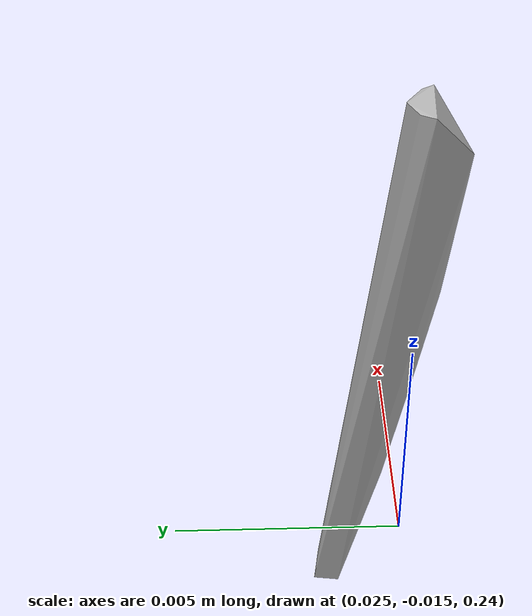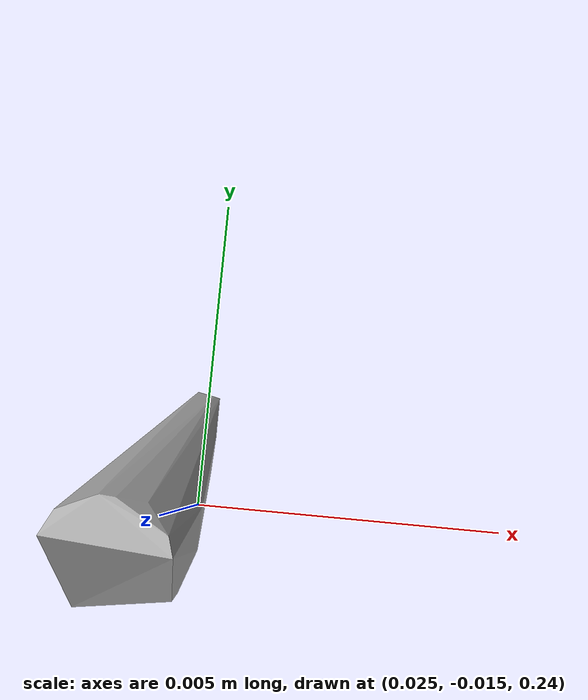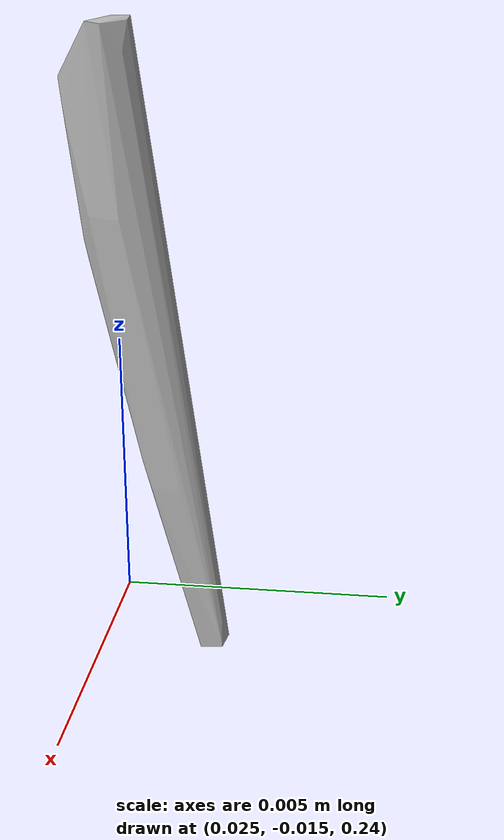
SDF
<?xml version="1.0"?>
<sdf version="1.7">
  <model name="vascular_partexport000">
    <link name="vascular_partexport000_body">
      <visual name="vascular_partexport000_visual">
        <geometry>
          <mesh>
            <uri>vascular_partexport000.obj</uri>
          </mesh>
        </geometry>
      </visual>
      <collision name="vascular_partexport000_collision">
        <geometry>
          <mesh>
            <uri>vascular_partexport000.obj</uri>
          </mesh>
        </geometry>
      </collision>
    </link>
    <frame name="vascular_partexport000_center">
      <pose relative_to="vascular_partexport000_body">0 0 0 0 0 0</pose>
    </frame>
  </model>
</sdf>
